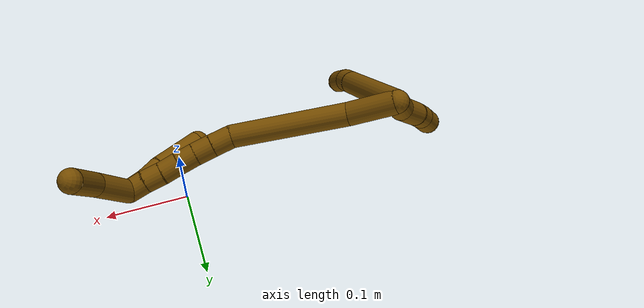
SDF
<sdf version="1.7">
 <world name="default">
  <model name="12">
   <static>0</static>
   <link name="12">
    <collision name="collision-cylinder-e_1_2_8">
     <pose>0.019443 -0.040222 -0.031226 2.23094 0.36474 0.720421</pose>
     <geometry><cylinder><radius>0.0125</radius><length>0.109013</length></cylinder></geometry>
     <surface>
      <friction><ode><mu>1.16</mu><mu2>1.16</mu2><slip1>0</slip1><slip2>0</slip2></ode></friction>
      <contact><ode><kp>1e+06</kp><kd>1</kd><max_vel>0</max_vel><min_depth>0.001</min_depth></ode></contact>
     </surface>
    </collision>
    <visual name="visual-cylinder-e_1_2_8">
     <pose>0.019443 -0.040222 -0.031226 2.23094 0.36474 0.720421</pose>
     <geometry><cylinder><radius>0.0125</radius><length>0.109013</length></cylinder></geometry>
     <material><ambient>0.466667 0.301961 0 1</ambient></material>
    </visual>
    <collision name="collision-cylinder-e_2_8_9">
     <pose>0.042175 -0.087373 -0.068983 2.32663 0.332702 0.741957</pose>
     <geometry><cylinder><radius>0.0125</radius><length>0.020146</length></cylinder></geometry>
     <surface>
      <friction><ode><mu>1.16</mu><mu2>1.16</mu2><slip1>0</slip1><slip2>0</slip2></ode></friction>
      <contact><ode><kp>1e+06</kp><kd>1</kd><max_vel>0</max_vel><min_depth>0.001</min_depth></ode></contact>
     </surface>
    </collision>
    <visual name="visual-cylinder-e_2_8_9">
     <pose>0.042175 -0.087373 -0.068983 2.32663 0.332702 0.741957</pose>
     <geometry><cylinder><radius>0.0125</radius><length>0.020146</length></cylinder></geometry>
     <material><ambient>0.466667 0.301961 0 1</ambient></material>
    </visual>
    <collision name="collision-cylinder-e_3_9_6">
     <pose>0.050847 -0.100193 -0.082215 2.42045 0.54275 1.27145</pose>
     <geometry><cylinder><radius>0.0125</radius><length>0.020841</length></cylinder></geometry>
     <surface>
      <friction><ode><mu>1.16</mu><mu2>1.16</mu2><slip1>0</slip1><slip2>0</slip2></ode></friction>
      <contact><ode><kp>1e+06</kp><kd>1</kd><max_vel>0</max_vel><min_depth>0.001</min_depth></ode></contact>
     </surface>
    </collision>
    <visual name="visual-cylinder-e_3_9_6">
     <pose>0.050847 -0.100193 -0.082215 2.42045 0.54275 1.27145</pose>
     <geometry><cylinder><radius>0.0125</radius><length>0.020841</length></cylinder></geometry>
     <material><ambient>0.466667 0.301961 0 1</ambient></material>
    </visual>
    <collision name="collision-cylinder-e_1_2_10">
     <pose>0.002561 -0.001162 -0.013408 3.05516 0.188058 2.28175</pose>
     <geometry><cylinder><radius>0.0125</radius><length>0.0274</length></cylinder></geometry>
     <surface>
      <friction><ode><mu>1.16</mu><mu2>1.16</mu2><slip1>0</slip1><slip2>0</slip2></ode></friction>
      <contact><ode><kp>1e+06</kp><kd>1</kd><max_vel>0</max_vel><min_depth>0.001</min_depth></ode></contact>
     </surface>
    </collision>
    <visual name="visual-cylinder-e_1_2_10">
     <pose>0.002561 -0.001162 -0.013408 3.05516 0.188058 2.28175</pose>
     <geometry><cylinder><radius>0.0125</radius><length>0.0274</length></cylinder></geometry>
     <material><ambient>0.466667 0.301961 0 1</ambient></material>
    </visual>
    <collision name="collision-cylinder-e_2_10_11">
     <pose>0.003398 -0.000994 -0.041935 -3.0539 -0.113122 1.82311</pose>
     <geometry><cylinder><radius>0.0125</radius><length>0.030549</length></cylinder></geometry>
     <surface>
      <friction><ode><mu>1.16</mu><mu2>1.16</mu2><slip1>0</slip1><slip2>0</slip2></ode></friction>
      <contact><ode><kp>1e+06</kp><kd>1</kd><max_vel>0</max_vel><min_depth>0.001</min_depth></ode></contact>
     </surface>
    </collision>
    <visual name="visual-cylinder-e_2_10_11">
     <pose>0.003398 -0.000994 -0.041935 -3.0539 -0.113122 1.82311</pose>
     <geometry><cylinder><radius>0.0125</radius><length>0.030549</length></cylinder></geometry>
     <material><ambient>0.466667 0.301961 0 1</ambient></material>
    </visual>
    <collision name="collision-cylinder-e_3_11_12">
     <pose>0.001895 -3.5e-05 -0.067063 3.10466 0.022034 1.07566</pose>
     <geometry><cylinder><radius>0.0125</radius><length>0.020037</length></cylinder></geometry>
     <surface>
      <friction><ode><mu>1.16</mu><mu2>1.16</mu2><slip1>0</slip1><slip2>0</slip2></ode></friction>
      <contact><ode><kp>1e+06</kp><kd>1</kd><max_vel>0</max_vel><min_depth>0.001</min_depth></ode></contact>
     </surface>
    </collision>
    <visual name="visual-cylinder-e_3_11_12">
     <pose>0.001895 -3.5e-05 -0.067063 3.10466 0.022034 1.07566</pose>
     <geometry><cylinder><radius>0.0125</radius><length>0.020037</length></cylinder></geometry>
     <material><ambient>0.466667 0.301961 0 1</ambient></material>
    </visual>
    <collision name="collision-cylinder-e_4_12_5">
     <pose>0.002816 2.4e-05 -0.088049 -3.10251 0.063663 -2.04063</pose>
     <geometry><cylinder><radius>0.0125</radius><length>0.022013</length></cylinder></geometry>
     <surface>
      <friction><ode><mu>1.16</mu><mu2>1.16</mu2><slip1>0</slip1><slip2>0</slip2></ode></friction>
      <contact><ode><kp>1e+06</kp><kd>1</kd><max_vel>0</max_vel><min_depth>0.001</min_depth></ode></contact>
     </surface>
    </collision>
    <visual name="visual-cylinder-e_4_12_5">
     <pose>0.002816 2.4e-05 -0.088049 -3.10251 0.063663 -2.04063</pose>
     <geometry><cylinder><radius>0.0125</radius><length>0.022013</length></cylinder></geometry>
     <material><ambient>0.466667 0.301961 0 1</ambient></material>
    </visual>
    <collision name="collision-cylinder-e_1_2_13">
     <pose>0.023199 -0.011315 0.001692 1.42235 1.11262 0.983662</pose>
     <geometry><cylinder><radius>0.0125</radius><length>0.051734</length></cylinder></geometry>
     <surface>
      <friction><ode><mu>1.16</mu><mu2>1.16</mu2><slip1>0</slip1><slip2>0</slip2></ode></friction>
      <contact><ode><kp>1e+06</kp><kd>1</kd><max_vel>0</max_vel><min_depth>0.001</min_depth></ode></contact>
     </surface>
    </collision>
    <visual name="visual-cylinder-e_1_2_13">
     <pose>0.023199 -0.011315 0.001692 1.42235 1.11262 0.983662</pose>
     <geometry><cylinder><radius>0.0125</radius><length>0.051734</length></cylinder></geometry>
     <material><ambient>0.466667 0.301961 0 1</ambient></material>
    </visual>
    <collision name="collision-cylinder-e_2_13_14">
     <pose>0.099681 -0.047092 0.024719 0.853559 1.02367 0.50021</pose>
     <geometry><cylinder><radius>0.0125</radius><length>0.124782</length></cylinder></geometry>
     <surface>
      <friction><ode><mu>1.16</mu><mu2>1.16</mu2><slip1>0</slip1><slip2>0</slip2></ode></friction>
      <contact><ode><kp>1e+06</kp><kd>1</kd><max_vel>0</max_vel><min_depth>0.001</min_depth></ode></contact>
     </surface>
    </collision>
    <visual name="visual-cylinder-e_2_13_14">
     <pose>0.099681 -0.047092 0.024719 0.853559 1.02367 0.50021</pose>
     <geometry><cylinder><radius>0.0125</radius><length>0.124782</length></cylinder></geometry>
     <material><ambient>0.466667 0.301961 0 1</ambient></material>
    </visual>
    <collision name="collision-cylinder-e_3_14_15">
     <pose>0.163286 -0.072485 0.051087 0.183212 1.11042 0.113841</pose>
     <geometry><cylinder><radius>0.0125</radius><length>0.023041</length></cylinder></geometry>
     <surface>
      <friction><ode><mu>1.16</mu><mu2>1.16</mu2><slip1>0</slip1><slip2>0</slip2></ode></friction>
      <contact><ode><kp>1e+06</kp><kd>1</kd><max_vel>0</max_vel><min_depth>0.001</min_depth></ode></contact>
     </surface>
    </collision>
    <visual name="visual-cylinder-e_3_14_15">
     <pose>0.163286 -0.072485 0.051087 0.183212 1.11042 0.113841</pose>
     <geometry><cylinder><radius>0.0125</radius><length>0.023041</length></cylinder></geometry>
     <material><ambient>0.466667 0.301961 0 1</ambient></material>
    </visual>
    <collision name="collision-cylinder-e_4_15_16">
     <pose>0.182792 -0.074147 0.060354 0.170594 1.13317 0.108682</pose>
     <geometry><cylinder><radius>0.0125</radius><length>0.020281</length></cylinder></geometry>
     <surface>
      <friction><ode><mu>1.16</mu><mu2>1.16</mu2><slip1>0</slip1><slip2>0</slip2></ode></friction>
      <contact><ode><kp>1e+06</kp><kd>1</kd><max_vel>0</max_vel><min_depth>0.001</min_depth></ode></contact>
     </surface>
    </collision>
    <visual name="visual-cylinder-e_4_15_16">
     <pose>0.182792 -0.074147 0.060354 0.170594 1.13317 0.108682</pose>
     <geometry><cylinder><radius>0.0125</radius><length>0.020281</length></cylinder></geometry>
     <material><ambient>0.466667 0.301961 0 1</ambient></material>
    </visual>
    <collision name="collision-cylinder-e_5_16_17">
     <pose>0.200907 -0.074825 0.069151 -0.011505 1.09852 -0.007042</pose>
     <geometry><cylinder><radius>0.0125</radius><length>0.020058</length></cylinder></geometry>
     <surface>
      <friction><ode><mu>1.16</mu><mu2>1.16</mu2><slip1>0</slip1><slip2>0</slip2></ode></friction>
      <contact><ode><kp>1e+06</kp><kd>1</kd><max_vel>0</max_vel><min_depth>0.001</min_depth></ode></contact>
     </surface>
    </collision>
    <visual name="visual-cylinder-e_5_16_17">
     <pose>0.200907 -0.074825 0.069151 -0.011505 1.09852 -0.007042</pose>
     <geometry><cylinder><radius>0.0125</radius><length>0.020058</length></cylinder></geometry>
     <material><ambient>0.466667 0.301961 0 1</ambient></material>
    </visual>
    <collision name="collision-cylinder-e_6_17_18">
     <pose>0.218872 -0.074579 0.078101 -0.043968 1.11826 -0.027516</pose>
     <geometry><cylinder><radius>0.0125</radius><length>0.020088</length></cylinder></geometry>
     <surface>
      <friction><ode><mu>1.16</mu><mu2>1.16</mu2><slip1>0</slip1><slip2>0</slip2></ode></friction>
      <contact><ode><kp>1e+06</kp><kd>1</kd><max_vel>0</max_vel><min_depth>0.001</min_depth></ode></contact>
     </surface>
    </collision>
    <visual name="visual-cylinder-e_6_17_18">
     <pose>0.218872 -0.074579 0.078101 -0.043968 1.11826 -0.027516</pose>
     <geometry><cylinder><radius>0.0125</radius><length>0.020088</length></cylinder></geometry>
     <material><ambient>0.466667 0.301961 0 1</ambient></material>
    </visual>
    <collision name="collision-cylinder-e_7_18_19">
     <pose>0.236876 -0.075099 0.086861 0.161547 1.11209 0.100528</pose>
     <geometry><cylinder><radius>0.0125</radius><length>0.020011</length></cylinder></geometry>
     <surface>
      <friction><ode><mu>1.16</mu><mu2>1.16</mu2><slip1>0</slip1><slip2>0</slip2></ode></friction>
      <contact><ode><kp>1e+06</kp><kd>1</kd><max_vel>0</max_vel><min_depth>0.001</min_depth></ode></contact>
     </surface>
    </collision>
    <visual name="visual-cylinder-e_7_18_19">
     <pose>0.236876 -0.075099 0.086861 0.161547 1.11209 0.100528</pose>
     <geometry><cylinder><radius>0.0125</radius><length>0.020011</length></cylinder></geometry>
     <material><ambient>0.466667 0.301961 0 1</ambient></material>
    </visual>
    <collision name="collision-cylinder-e_8_19_1">
     <pose>0.25512 -0.075877 0.094983 0.017626 1.18654 0.011885</pose>
     <geometry><cylinder><radius>0.0125</radius><length>0.020006</length></cylinder></geometry>
     <surface>
      <friction><ode><mu>1.16</mu><mu2>1.16</mu2><slip1>0</slip1><slip2>0</slip2></ode></friction>
      <contact><ode><kp>1e+06</kp><kd>1</kd><max_vel>0</max_vel><min_depth>0.001</min_depth></ode></contact>
     </surface>
    </collision>
    <visual name="visual-cylinder-e_8_19_1">
     <pose>0.25512 -0.075877 0.094983 0.017626 1.18654 0.011885</pose>
     <geometry><cylinder><radius>0.0125</radius><length>0.020006</length></cylinder></geometry>
     <material><ambient>0.466667 0.301961 0 1</ambient></material>
    </visual>
    <collision name="collision-cylinder-e_1_1_20">
     <pose>0.25705 -0.07844 0.09174 2.79858 -0.779903 -2.34391</pose>
     <geometry><cylinder><radius>0.0125</radius><length>0.020886</length></cylinder></geometry>
     <surface>
      <friction><ode><mu>1.16</mu><mu2>1.16</mu2><slip1>0</slip1><slip2>0</slip2></ode></friction>
      <contact><ode><kp>1e+06</kp><kd>1</kd><max_vel>0</max_vel><min_depth>0.001</min_depth></ode></contact>
     </surface>
    </collision>
    <visual name="visual-cylinder-e_1_1_20">
     <pose>0.25705 -0.07844 0.09174 2.79858 -0.779903 -2.34391</pose>
     <geometry><cylinder><radius>0.0125</radius><length>0.020886</length></cylinder></geometry>
     <material><ambient>0.466667 0.301961 0 1</ambient></material>
    </visual>
    <collision name="collision-cylinder-e_2_20_21">
     <pose>0.24268 -0.08571 0.077055 2.58631 -0.660034 -1.75368</pose>
     <geometry><cylinder><radius>0.0125</radius><length>0.02292</length></cylinder></geometry>
     <surface>
      <friction><ode><mu>1.16</mu><mu2>1.16</mu2><slip1>0</slip1><slip2>0</slip2></ode></friction>
      <contact><ode><kp>1e+06</kp><kd>1</kd><max_vel>0</max_vel><min_depth>0.001</min_depth></ode></contact>
     </surface>
    </collision>
    <visual name="visual-cylinder-e_2_20_21">
     <pose>0.24268 -0.08571 0.077055 2.58631 -0.660034 -1.75368</pose>
     <geometry><cylinder><radius>0.0125</radius><length>0.02292</length></cylinder></geometry>
     <material><ambient>0.466667 0.301961 0 1</ambient></material>
    </visual>
    <collision name="collision-cylinder-e_3_21_4">
     <pose>0.218573 -0.09869 0.048617 2.76484 -0.653417 -2.11667</pose>
     <geometry><cylinder><radius>0.0125</radius><length>0.056194</length></cylinder></geometry>
     <surface>
      <friction><ode><mu>1.16</mu><mu2>1.16</mu2><slip1>0</slip1><slip2>0</slip2></ode></friction>
      <contact><ode><kp>1e+06</kp><kd>1</kd><max_vel>0</max_vel><min_depth>0.001</min_depth></ode></contact>
     </surface>
    </collision>
    <visual name="visual-cylinder-e_3_21_4">
     <pose>0.218573 -0.09869 0.048617 2.76484 -0.653417 -2.11667</pose>
     <geometry><cylinder><radius>0.0125</radius><length>0.056194</length></cylinder></geometry>
     <material><ambient>0.466667 0.301961 0 1</ambient></material>
    </visual>
    <collision name="collision-cylinder-e_1_1_22">
     <pose>0.262656 -0.07592 0.124947 -0.000898 -0.06619 3e-05</pose>
     <geometry><cylinder><radius>0.0125</radius><length>0.052546</length></cylinder></geometry>
     <surface>
      <friction><ode><mu>1.16</mu><mu2>1.16</mu2><slip1>0</slip1><slip2>0</slip2></ode></friction>
      <contact><ode><kp>1e+06</kp><kd>1</kd><max_vel>0</max_vel><min_depth>0.001</min_depth></ode></contact>
     </surface>
    </collision>
    <visual name="visual-cylinder-e_1_1_22">
     <pose>0.262656 -0.07592 0.124947 -0.000898 -0.06619 3e-05</pose>
     <geometry><cylinder><radius>0.0125</radius><length>0.052546</length></cylinder></geometry>
     <material><ambient>0.466667 0.301961 0 1</ambient></material>
    </visual>
    <collision name="collision-cylinder-e_2_22_3">
     <pose>0.254878 -0.070637 0.173497 -0.231279 -0.257428 0.030066</pose>
     <geometry><cylinder><radius>0.0125</radius><length>0.047454</length></cylinder></geometry>
     <surface>
      <friction><ode><mu>1.16</mu><mu2>1.16</mu2><slip1>0</slip1><slip2>0</slip2></ode></friction>
      <contact><ode><kp>1e+06</kp><kd>1</kd><max_vel>0</max_vel><min_depth>0.001</min_depth></ode></contact>
     </surface>
    </collision>
    <visual name="visual-cylinder-e_2_22_3">
     <pose>0.254878 -0.070637 0.173497 -0.231279 -0.257428 0.030066</pose>
     <geometry><cylinder><radius>0.0125</radius><length>0.047454</length></cylinder></geometry>
     <material><ambient>0.466667 0.301961 0 1</ambient></material>
    </visual>
    <collision name="collision-sphere-3">
     <pose>0.248837 -0.065377 0.195831 0 -0 0</pose>
     <geometry><sphere><radius>0.0125</radius></sphere></geometry>
     <surface>
      <friction><ode><mu>1.16</mu><mu2>1.16</mu2><slip1>0</slip1><slip2>0</slip2></ode></friction>
      <contact><ode><kp>1e+06</kp><kd>1</kd><max_vel>0</max_vel><min_depth>0.001</min_depth></ode></contact>
     </surface>
    </collision>
    <visual name="visual-sphere-3">
     <pose>0.248837 -0.065377 0.195831 0 -0 0</pose>
     <geometry><sphere><radius>0.0125</radius></sphere></geometry>
     <material><ambient>0.466667 0.301961 0 1</ambient></material>
    </visual>
    <collision name="collision-sphere-22">
     <pose>0.260918 -0.075896 0.151162 0 -0 0</pose>
     <geometry><sphere><radius>0.0125</radius></sphere></geometry>
     <surface>
      <friction><ode><mu>1.16</mu><mu2>1.16</mu2><slip1>0</slip1><slip2>0</slip2></ode></friction>
      <contact><ode><kp>1e+06</kp><kd>1</kd><max_vel>0</max_vel><min_depth>0.001</min_depth></ode></contact>
     </surface>
    </collision>
    <visual name="visual-sphere-22">
     <pose>0.260918 -0.075896 0.151162 0 -0 0</pose>
     <geometry><sphere><radius>0.0125</radius></sphere></geometry>
     <material><ambient>0.466667 0.301961 0 1</ambient></material>
    </visual>
    <collision name="collision-sphere-4">
     <pose>0.201493 -0.106898 0.027872 0 -0 0</pose>
     <geometry><sphere><radius>0.0125</radius></sphere></geometry>
     <surface>
      <friction><ode><mu>1.16</mu><mu2>1.16</mu2><slip1>0</slip1><slip2>0</slip2></ode></friction>
      <contact><ode><kp>1e+06</kp><kd>1</kd><max_vel>0</max_vel><min_depth>0.001</min_depth></ode></contact>
     </surface>
    </collision>
    <visual name="visual-sphere-4">
     <pose>0.201493 -0.106898 0.027872 0 -0 0</pose>
     <geometry><sphere><radius>0.0125</radius></sphere></geometry>
     <material><ambient>0.466667 0.301961 0 1</ambient></material>
    </visual>
    <collision name="collision-sphere-21">
     <pose>0.235654 -0.090483 0.069362 0 -0 0</pose>
     <geometry><sphere><radius>0.0125</radius></sphere></geometry>
     <surface>
      <friction><ode><mu>1.16</mu><mu2>1.16</mu2><slip1>0</slip1><slip2>0</slip2></ode></friction>
      <contact><ode><kp>1e+06</kp><kd>1</kd><max_vel>0</max_vel><min_depth>0.001</min_depth></ode></contact>
     </surface>
    </collision>
    <visual name="visual-sphere-21">
     <pose>0.235654 -0.090483 0.069362 0 -0 0</pose>
     <geometry><sphere><radius>0.0125</radius></sphere></geometry>
     <material><ambient>0.466667 0.301961 0 1</ambient></material>
    </visual>
    <collision name="collision-sphere-20">
     <pose>0.249707 -0.080938 0.084747 0 -0 0</pose>
     <geometry><sphere><radius>0.0125</radius></sphere></geometry>
     <surface>
      <friction><ode><mu>1.16</mu><mu2>1.16</mu2><slip1>0</slip1><slip2>0</slip2></ode></friction>
      <contact><ode><kp>1e+06</kp><kd>1</kd><max_vel>0</max_vel><min_depth>0.001</min_depth></ode></contact>
     </surface>
    </collision>
    <visual name="visual-sphere-20">
     <pose>0.249707 -0.080938 0.084747 0 -0 0</pose>
     <geometry><sphere><radius>0.0125</radius></sphere></geometry>
     <material><ambient>0.466667 0.301961 0 1</ambient></material>
    </visual>
    <collision name="collision-sphere-11">
     <pose>0.001674 0.000335 -0.057054 0 -0 0</pose>
     <geometry><sphere><radius>0.0125</radius></sphere></geometry>
     <surface>
      <friction><ode><mu>1.16</mu><mu2>1.16</mu2><slip1>0</slip1><slip2>0</slip2></ode></friction>
      <contact><ode><kp>1e+06</kp><kd>1</kd><max_vel>0</max_vel><min_depth>0.001</min_depth></ode></contact>
     </surface>
    </collision>
    <visual name="visual-sphere-11">
     <pose>0.001674 0.000335 -0.057054 0 -0 0</pose>
     <geometry><sphere><radius>0.0125</radius></sphere></geometry>
     <material><ambient>0.466667 0.301961 0 1</ambient></material>
    </visual>
    <collision name="collision-sphere-10">
     <pose>0.005123 -0.002324 -0.026817 0 -0 0</pose>
     <geometry><sphere><radius>0.0125</radius></sphere></geometry>
     <surface>
      <friction><ode><mu>1.16</mu><mu2>1.16</mu2><slip1>0</slip1><slip2>0</slip2></ode></friction>
      <contact><ode><kp>1e+06</kp><kd>1</kd><max_vel>0</max_vel><min_depth>0.001</min_depth></ode></contact>
     </surface>
    </collision>
    <visual name="visual-sphere-10">
     <pose>0.005123 -0.002324 -0.026817 0 -0 0</pose>
     <geometry><sphere><radius>0.0125</radius></sphere></geometry>
     <material><ambient>0.466667 0.301961 0 1</ambient></material>
    </visual>
    <collision name="collision-sphere-6">
     <pose>0.056229 -0.106084 -0.088916 0 -0 0</pose>
     <geometry><sphere><radius>0.0125</radius></sphere></geometry>
     <surface>
      <friction><ode><mu>1.16</mu><mu2>1.16</mu2><slip1>0</slip1><slip2>0</slip2></ode></friction>
      <contact><ode><kp>1e+06</kp><kd>1</kd><max_vel>0</max_vel><min_depth>0.001</min_depth></ode></contact>
     </surface>
    </collision>
    <visual name="visual-sphere-6">
     <pose>0.056229 -0.106084 -0.088916 0 -0 0</pose>
     <geometry><sphere><radius>0.0125</radius></sphere></geometry>
     <material><ambient>0.466667 0.301961 0 1</ambient></material>
    </visual>
    <collision name="collision-sphere-9">
     <pose>0.045465 -0.094301 -0.075513 0 -0 0</pose>
     <geometry><sphere><radius>0.0125</radius></sphere></geometry>
     <surface>
      <friction><ode><mu>1.16</mu><mu2>1.16</mu2><slip1>0</slip1><slip2>0</slip2></ode></friction>
      <contact><ode><kp>1e+06</kp><kd>1</kd><max_vel>0</max_vel><min_depth>0.001</min_depth></ode></contact>
     </surface>
    </collision>
    <visual name="visual-sphere-9">
     <pose>0.045465 -0.094301 -0.075513 0 -0 0</pose>
     <geometry><sphere><radius>0.0125</radius></sphere></geometry>
     <material><ambient>0.466667 0.301961 0 1</ambient></material>
    </visual>
    <collision name="collision-sphere-2">
     <geometry><sphere><radius>0.0125</radius></sphere></geometry>
     <surface>
      <friction><ode><mu>1.16</mu><mu2>1.16</mu2><slip1>0</slip1><slip2>0</slip2></ode></friction>
      <contact><ode><kp>1e+06</kp><kd>1</kd><max_vel>0</max_vel><min_depth>0.001</min_depth></ode></contact>
     </surface>
    </collision>
    <visual name="visual-sphere-2">
     <geometry><sphere><radius>0.0125</radius></sphere></geometry>
     <material><ambient>0.466667 0.301961 0 1</ambient></material>
    </visual>
    <collision name="collision-sphere-19">
     <pose>0.245847 -0.075811 0.091233 0 -0 0</pose>
     <geometry><sphere><radius>0.0125</radius></sphere></geometry>
     <surface>
      <friction><ode><mu>1.16</mu><mu2>1.16</mu2><slip1>0</slip1><slip2>0</slip2></ode></friction>
      <contact><ode><kp>1e+06</kp><kd>1</kd><max_vel>0</max_vel><min_depth>0.001</min_depth></ode></contact>
     </surface>
    </collision>
    <visual name="visual-sphere-19">
     <pose>0.245847 -0.075811 0.091233 0 -0 0</pose>
     <geometry><sphere><radius>0.0125</radius></sphere></geometry>
     <material><ambient>0.466667 0.301961 0 1</ambient></material>
    </visual>
    <collision name="collision-sphere-8">
     <pose>0.038886 -0.080445 -0.062453 0 -0 0</pose>
     <geometry><sphere><radius>0.0125</radius></sphere></geometry>
     <surface>
      <friction><ode><mu>1.16</mu><mu2>1.16</mu2><slip1>0</slip1><slip2>0</slip2></ode></friction>
      <contact><ode><kp>1e+06</kp><kd>1</kd><max_vel>0</max_vel><min_depth>0.001</min_depth></ode></contact>
     </surface>
    </collision>
    <visual name="visual-sphere-8">
     <pose>0.038886 -0.080445 -0.062453 0 -0 0</pose>
     <geometry><sphere><radius>0.0125</radius></sphere></geometry>
     <material><ambient>0.466667 0.301961 0 1</ambient></material>
    </visual>
    <collision name="collision-sphere-12">
     <pose>0.002116 -0.000405 -0.077073 0 -0 0</pose>
     <geometry><sphere><radius>0.0125</radius></sphere></geometry>
     <surface>
      <friction><ode><mu>1.16</mu><mu2>1.16</mu2><slip1>0</slip1><slip2>0</slip2></ode></friction>
      <contact><ode><kp>1e+06</kp><kd>1</kd><max_vel>0</max_vel><min_depth>0.001</min_depth></ode></contact>
     </surface>
    </collision>
    <visual name="visual-sphere-12">
     <pose>0.002116 -0.000405 -0.077073 0 -0 0</pose>
     <geometry><sphere><radius>0.0125</radius></sphere></geometry>
     <material><ambient>0.466667 0.301961 0 1</ambient></material>
    </visual>
    <collision name="collision-sphere-5">
     <pose>0.003516 0.000454 -0.099025 0 -0 0</pose>
     <geometry><sphere><radius>0.0125</radius></sphere></geometry>
     <surface>
      <friction><ode><mu>1.16</mu><mu2>1.16</mu2><slip1>0</slip1><slip2>0</slip2></ode></friction>
      <contact><ode><kp>1e+06</kp><kd>1</kd><max_vel>0</max_vel><min_depth>0.001</min_depth></ode></contact>
     </surface>
    </collision>
    <visual name="visual-sphere-5">
     <pose>0.003516 0.000454 -0.099025 0 -0 0</pose>
     <geometry><sphere><radius>0.0125</radius></sphere></geometry>
     <material><ambient>0.466667 0.301961 0 1</ambient></material>
    </visual>
    <collision name="collision-sphere-13">
     <pose>0.046398 -0.022631 0.003384 0 -0 0</pose>
     <geometry><sphere><radius>0.0125</radius></sphere></geometry>
     <surface>
      <friction><ode><mu>1.16</mu><mu2>1.16</mu2><slip1>0</slip1><slip2>0</slip2></ode></friction>
      <contact><ode><kp>1e+06</kp><kd>1</kd><max_vel>0</max_vel><min_depth>0.001</min_depth></ode></contact>
     </surface>
    </collision>
    <visual name="visual-sphere-13">
     <pose>0.046398 -0.022631 0.003384 0 -0 0</pose>
     <geometry><sphere><radius>0.0125</radius></sphere></geometry>
     <material><ambient>0.466667 0.301961 0 1</ambient></material>
    </visual>
    <collision name="collision-sphere-14">
     <pose>0.152964 -0.071553 0.046054 0 -0 0</pose>
     <geometry><sphere><radius>0.0125</radius></sphere></geometry>
     <surface>
      <friction><ode><mu>1.16</mu><mu2>1.16</mu2><slip1>0</slip1><slip2>0</slip2></ode></friction>
      <contact><ode><kp>1e+06</kp><kd>1</kd><max_vel>0</max_vel><min_depth>0.001</min_depth></ode></contact>
     </surface>
    </collision>
    <visual name="visual-sphere-14">
     <pose>0.152964 -0.071553 0.046054 0 -0 0</pose>
     <geometry><sphere><radius>0.0125</radius></sphere></geometry>
     <material><ambient>0.466667 0.301961 0 1</ambient></material>
    </visual>
    <collision name="collision-sphere-15">
     <pose>0.173607 -0.073418 0.056119 0 -0 0</pose>
     <geometry><sphere><radius>0.0125</radius></sphere></geometry>
     <surface>
      <friction><ode><mu>1.16</mu><mu2>1.16</mu2><slip1>0</slip1><slip2>0</slip2></ode></friction>
      <contact><ode><kp>1e+06</kp><kd>1</kd><max_vel>0</max_vel><min_depth>0.001</min_depth></ode></contact>
     </surface>
    </collision>
    <visual name="visual-sphere-15">
     <pose>0.173607 -0.073418 0.056119 0 -0 0</pose>
     <geometry><sphere><radius>0.0125</radius></sphere></geometry>
     <material><ambient>0.466667 0.301961 0 1</ambient></material>
    </visual>
    <collision name="collision-sphere-16">
     <pose>0.191976 -0.074877 0.064589 0 -0 0</pose>
     <geometry><sphere><radius>0.0125</radius></sphere></geometry>
     <surface>
      <friction><ode><mu>1.16</mu><mu2>1.16</mu2><slip1>0</slip1><slip2>0</slip2></ode></friction>
      <contact><ode><kp>1e+06</kp><kd>1</kd><max_vel>0</max_vel><min_depth>0.001</min_depth></ode></contact>
     </surface>
    </collision>
    <visual name="visual-sphere-16">
     <pose>0.191976 -0.074877 0.064589 0 -0 0</pose>
     <geometry><sphere><radius>0.0125</radius></sphere></geometry>
     <material><ambient>0.466667 0.301961 0 1</ambient></material>
    </visual>
    <collision name="collision-sphere-17">
     <pose>0.209838 -0.074772 0.073713 0 -0 0</pose>
     <geometry><sphere><radius>0.0125</radius></sphere></geometry>
     <surface>
      <friction><ode><mu>1.16</mu><mu2>1.16</mu2><slip1>0</slip1><slip2>0</slip2></ode></friction>
      <contact><ode><kp>1e+06</kp><kd>1</kd><max_vel>0</max_vel><min_depth>0.001</min_depth></ode></contact>
     </surface>
    </collision>
    <visual name="visual-sphere-17">
     <pose>0.209838 -0.074772 0.073713 0 -0 0</pose>
     <geometry><sphere><radius>0.0125</radius></sphere></geometry>
     <material><ambient>0.466667 0.301961 0 1</ambient></material>
    </visual>
    <collision name="collision-sphere-18">
     <pose>0.227905 -0.074386 0.082488 0 -0 0</pose>
     <geometry><sphere><radius>0.0125</radius></sphere></geometry>
     <surface>
      <friction><ode><mu>1.16</mu><mu2>1.16</mu2><slip1>0</slip1><slip2>0</slip2></ode></friction>
      <contact><ode><kp>1e+06</kp><kd>1</kd><max_vel>0</max_vel><min_depth>0.001</min_depth></ode></contact>
     </surface>
    </collision>
    <visual name="visual-sphere-18">
     <pose>0.227905 -0.074386 0.082488 0 -0 0</pose>
     <geometry><sphere><radius>0.0125</radius></sphere></geometry>
     <material><ambient>0.466667 0.301961 0 1</ambient></material>
    </visual>
    <collision name="collision-sphere-1">
     <pose>0.264394 -0.075943 0.098732 0 -0 0</pose>
     <geometry><sphere><radius>0.0125</radius></sphere></geometry>
     <surface>
      <friction><ode><mu>1.16</mu><mu2>1.16</mu2><slip1>0</slip1><slip2>0</slip2></ode></friction>
      <contact><ode><kp>1e+06</kp><kd>1</kd><max_vel>0</max_vel><min_depth>0.001</min_depth></ode></contact>
     </surface>
    </collision>
    <visual name="visual-sphere-1">
     <pose>0.264394 -0.075943 0.098732 0 -0 0</pose>
     <geometry><sphere><radius>0.0125</radius></sphere></geometry>
     <material><ambient>0.466667 0.301961 0 1</ambient></material>
    </visual>
    <inertial>
     <pose>0.123722 -0.053921 0.029257 0 -0 0</pose>
     <mass>0.75</mass>
     <inertia>
      <ixx>0.000306</ixx>
      <ixy>0</ixy>
      <ixz>0</ixz>
      <iyy>0.000272</iyy>
      <iyz>0</iyz>
      <izz>-3.3e-05</izz>
     </inertia>
    </inertial>
   </link>
   <pose>-0.219526 0.048683 0.188505 -0.008022 0.658068 0.20016</pose>
  </model>
 </world>
</sdf>
